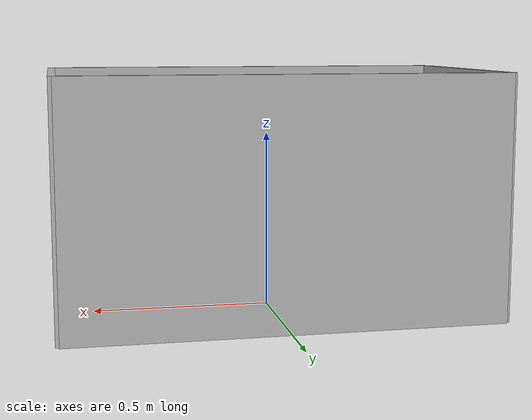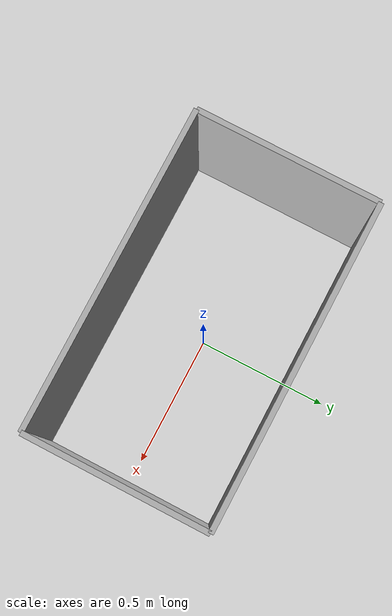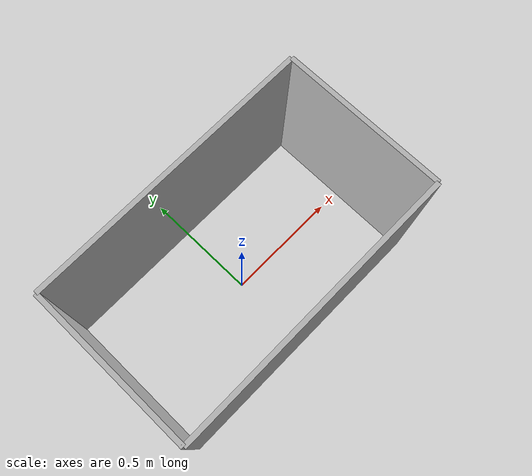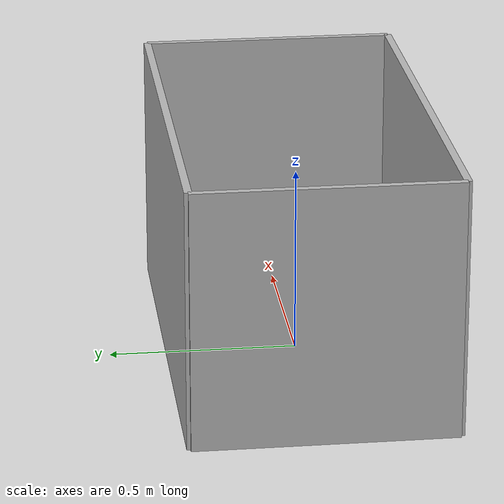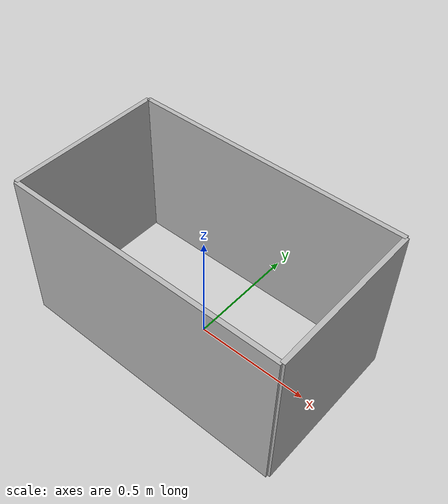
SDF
<?xml version='1.0'?>
<sdf version='1.4'>
	<model name="ldc_container-big">
		<static>true</static>

		<link name='container_1'>

			<inertial>
                <mass>10000</mass>
                <inertia>
                    <ixx>1000.0000001667</ixx>
                    <ixy>1000</ixy>
                    <ixz>1000</ixz>
                    <iyy>1000.0000000667</iyy>
                    <iyz>1000</iyz>
                    <izz>1000.0000001667</izz>
                </inertia>
            </inertial>

			<!-- This is the first wall of the container -->
			<collision name='sidewall_1'>
				<pose>0 0.34 0.34 0 0 0</pose>
				<geometry>
					<box>
						<size>1.2 0.02 0.68</size>
					</box>
				</geometry>

			</collision>

			<visual name='sidewall_1'>
				<pose>0 0.34 0.34 0 0 0</pose>
				<geometry>
					<box>
						<size>1.2 0.02 0.68</size>
					</box>
				</geometry>
			</visual>

			<!-- This is the second wall of the container -->
			<collision name='sidewall_2'>
				<pose>0.6 0 0.34 0 0 0</pose>
				<geometry>
					<box>
						<size>0.02 0.68 0.68</size>
					</box>
				</geometry>

			</collision>

			<visual name='sidewall_2'>
				<pose>0.6 0 0.34 0 0 0</pose>
				<geometry>
					<box>
						<size>0.02 0.68 0.68</size>
					</box>
				</geometry>
			</visual>

			<!-- This is the third wall of the container -->
			<collision name='sidewall_3'>
				<pose>0 -0.34 0.34 0 0 0</pose>
				<geometry>
					<box>
						<size>1.2 0.02 0.68</size>
					</box>
				</geometry>

			</collision>

			<visual name='sidewall_3'>
				<pose>0 -0.34 0.34 0 0 0</pose>
				<geometry>
					<box>
						<size>1.2 0.02 0.68</size>
					</box>
				</geometry>
			</visual>

			<!-- This is the fourth wall of the container -->
			<collision name='sidewall_4'>
				<pose>-0.6 0 0.34 0 0 0</pose>
				<geometry>
					<box>
						<size>0.02 0.68 0.68</size>
					</box>
				</geometry>

			</collision>

			<visual name='sidewall_4'>
				<pose>-0.6 0 0.34 0 0 0</pose>
				<geometry>
					<box>
						<size>0.02 0.68 0.68</size>
					</box>
				</geometry>
			</visual>

			<!-- This is base of the container -->

		</link>
	</model>
</sdf>
